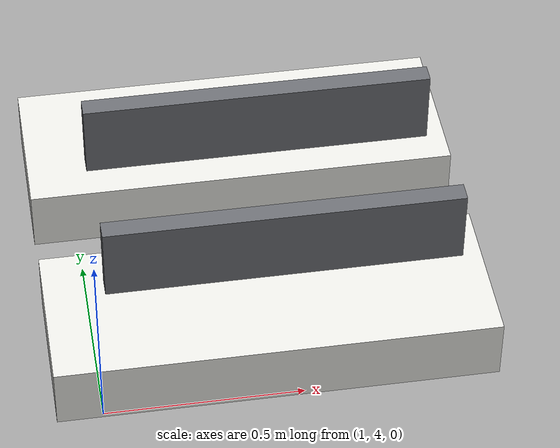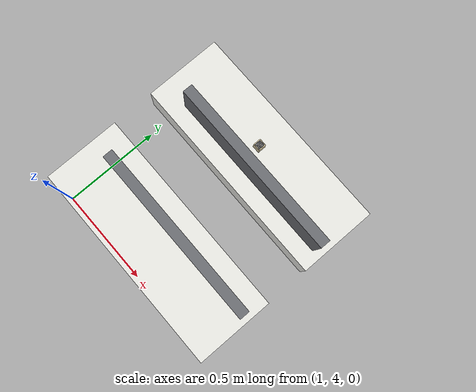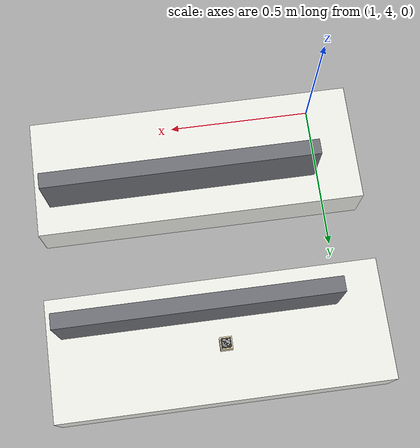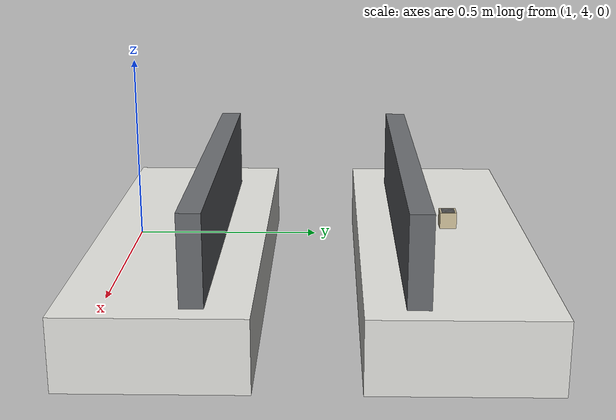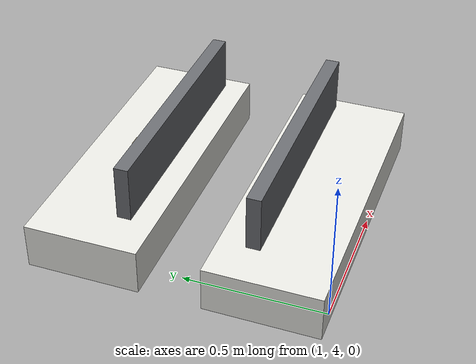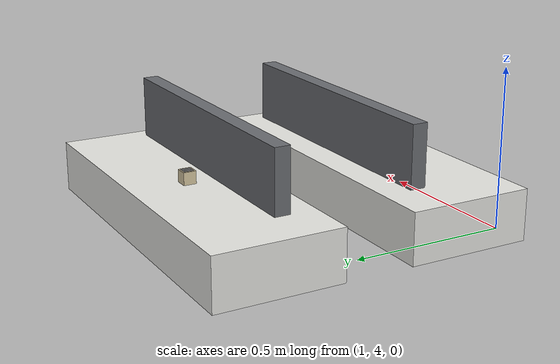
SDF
<sdf version="1.9">
 <world name="arena">
  <model name="map_wall_4">
   <static>true</static>
   <pose>1.48900 4.72000 0.18000 0 0 0.0000000</pose>
   <link name="body">
    <collision name="collision"><geometry><box><size>0.90000 0.05000 0.36000</size></box></geometry></collision>
    <visual name="appearance">
     <geometry><box><size>0.90000 0.05000 0.36000</size></box></geometry>
     <material><ambient>0.42 0.43 0.45 1</ambient><diffuse>0.42 0.43 0.45 1</diffuse></material>
    </visual>
   </link>
  </model>
  <model name="map_wall_7">
   <static>true</static>
   <pose>1.48900 4.27000 0.18000 0 0 0.0000000</pose>
   <link name="body">
    <collision name="collision"><geometry><box><size>0.90000 0.05000 0.36000</size></box></geometry></collision>
    <visual name="appearance">
     <geometry><box><size>0.90000 0.05000 0.36000</size></box></geometry>
     <material><ambient>0.42 0.43 0.45 1</ambient><diffuse>0.42 0.43 0.45 1</diffuse></material>
    </visual>
   </link>
  </model>
  <model name="ws_2_table">
   <static>true</static>
   <pose>1.43628 4.81000 0.08100 0 0 -1.5700000</pose>
   <link name="body">
    <collision name="collision"><geometry><box><size>0.40000 1.10000 0.16200</size></box></geometry></collision>
    <visual name="appearance">
     <geometry><box><size>0.40000 1.10000 0.16200</size></box></geometry>
     <material><ambient>0.91 0.91 0.89 1</ambient><diffuse>0.91 0.91 0.89 1</diffuse></material>
    </visual>
   </link>
  </model>
  <model name="cube_3">
   <pose>1.41626 4.82998 0.18200 0 0 0</pose>
   <link name="body">
    <inertial>
     <mass>0.04</mass>
     <inertia>
      <ixx>0.000010667</ixx>
      <iyy>0.000010667</iyy>
      <izz>0.000010667</izz>
      <ixy>0</ixy>
      <ixz>0</ixz>
      <iyz>0</iyz>
     </inertia>
    </inertial>
    <collision name="cube">
     <geometry><box><size>0.04 0.04 0.04</size></box></geometry>
     <surface><friction><ode><mu>1.2</mu><mu2>1.2</mu2></ode></friction></surface>
    </collision>
    <visual name="cube_appearance">
     <geometry><box><size>0.04 0.04 0.04</size></box></geometry>
     <material><ambient>0.85 0.79 0.64 1</ambient><diffuse>0.85 0.79 0.64 1</diffuse></material>
    </visual>
    <visual name="tag_0_0">
     <pose>-0.0140 0.0140 0.0202 0 0 0</pose>
     <geometry><plane><normal>0 0 1</normal><size>0.004 0.004</size></plane></geometry>
     <material><ambient>0.01 0.01 0.01 1</ambient><diffuse>0.01 0.01 0.01 1</diffuse></material>
    </visual>
    <visual name="tag_0_1">
     <pose>-0.0100 0.0140 0.0202 0 0 0</pose>
     <geometry><plane><normal>0 0 1</normal><size>0.004 0.004</size></plane></geometry>
     <material><ambient>0.01 0.01 0.01 1</ambient><diffuse>0.01 0.01 0.01 1</diffuse></material>
    </visual>
    <visual name="tag_0_2">
     <pose>-0.0060 0.0140 0.0202 0 0 0</pose>
     <geometry><plane><normal>0 0 1</normal><size>0.004 0.004</size></plane></geometry>
     <material><ambient>0.01 0.01 0.01 1</ambient><diffuse>0.01 0.01 0.01 1</diffuse></material>
    </visual>
    <visual name="tag_0_3">
     <pose>-0.0020 0.0140 0.0202 0 0 0</pose>
     <geometry><plane><normal>0 0 1</normal><size>0.004 0.004</size></plane></geometry>
     <material><ambient>0.01 0.01 0.01 1</ambient><diffuse>0.01 0.01 0.01 1</diffuse></material>
    </visual>
    <visual name="tag_0_4">
     <pose>0.0020 0.0140 0.0202 0 0 0</pose>
     <geometry><plane><normal>0 0 1</normal><size>0.004 0.004</size></plane></geometry>
     <material><ambient>0.01 0.01 0.01 1</ambient><diffuse>0.01 0.01 0.01 1</diffuse></material>
    </visual>
    <visual name="tag_0_5">
     <pose>0.0060 0.0140 0.0202 0 0 0</pose>
     <geometry><plane><normal>0 0 1</normal><size>0.004 0.004</size></plane></geometry>
     <material><ambient>0.01 0.01 0.01 1</ambient><diffuse>0.01 0.01 0.01 1</diffuse></material>
    </visual>
    <visual name="tag_0_6">
     <pose>0.0100 0.0140 0.0202 0 0 0</pose>
     <geometry><plane><normal>0 0 1</normal><size>0.004 0.004</size></plane></geometry>
     <material><ambient>0.01 0.01 0.01 1</ambient><diffuse>0.01 0.01 0.01 1</diffuse></material>
    </visual>
    <visual name="tag_0_7">
     <pose>0.0140 0.0140 0.0202 0 0 0</pose>
     <geometry><plane><normal>0 0 1</normal><size>0.004 0.004</size></plane></geometry>
     <material><ambient>0.01 0.01 0.01 1</ambient><diffuse>0.01 0.01 0.01 1</diffuse></material>
    </visual>
    <visual name="tag_1_0">
     <pose>-0.0140 0.0100 0.0202 0 0 0</pose>
     <geometry><plane><normal>0 0 1</normal><size>0.004 0.004</size></plane></geometry>
     <material><ambient>0.01 0.01 0.01 1</ambient><diffuse>0.01 0.01 0.01 1</diffuse></material>
    </visual>
    <visual name="tag_1_1">
     <pose>-0.0100 0.0100 0.0202 0 0 0</pose>
     <geometry><plane><normal>0 0 1</normal><size>0.004 0.004</size></plane></geometry>
     <material><ambient>0.01 0.01 0.01 1</ambient><diffuse>0.01 0.01 0.01 1</diffuse></material>
    </visual>
    <visual name="tag_1_2">
     <pose>-0.0060 0.0100 0.0202 0 0 0</pose>
     <geometry><plane><normal>0 0 1</normal><size>0.004 0.004</size></plane></geometry>
     <material><ambient>0.01 0.01 0.01 1</ambient><diffuse>0.01 0.01 0.01 1</diffuse></material>
    </visual>
    <visual name="tag_1_3">
     <pose>-0.0020 0.0100 0.0202 0 0 0</pose>
     <geometry><plane><normal>0 0 1</normal><size>0.004 0.004</size></plane></geometry>
     <material><ambient>0.01 0.01 0.01 1</ambient><diffuse>0.01 0.01 0.01 1</diffuse></material>
    </visual>
    <visual name="tag_1_4">
     <pose>0.0020 0.0100 0.0202 0 0 0</pose>
     <geometry><plane><normal>0 0 1</normal><size>0.004 0.004</size></plane></geometry>
     <material><ambient>0.95 0.95 0.95 1</ambient><diffuse>0.95 0.95 0.95 1</diffuse></material>
    </visual>
    <visual name="tag_1_5">
     <pose>0.0060 0.0100 0.0202 0 0 0</pose>
     <geometry><plane><normal>0 0 1</normal><size>0.004 0.004</size></plane></geometry>
     <material><ambient>0.95 0.95 0.95 1</ambient><diffuse>0.95 0.95 0.95 1</diffuse></material>
    </visual>
    <visual name="tag_1_6">
     <pose>0.0100 0.0100 0.0202 0 0 0</pose>
     <geometry><plane><normal>0 0 1</normal><size>0.004 0.004</size></plane></geometry>
     <material><ambient>0.01 0.01 0.01 1</ambient><diffuse>0.01 0.01 0.01 1</diffuse></material>
    </visual>
    <visual name="tag_1_7">
     <pose>0.0140 0.0100 0.0202 0 0 0</pose>
     <geometry><plane><normal>0 0 1</normal><size>0.004 0.004</size></plane></geometry>
     <material><ambient>0.01 0.01 0.01 1</ambient><diffuse>0.01 0.01 0.01 1</diffuse></material>
    </visual>
    <visual name="tag_2_0">
     <pose>-0.0140 0.0060 0.0202 0 0 0</pose>
     <geometry><plane><normal>0 0 1</normal><size>0.004 0.004</size></plane></geometry>
     <material><ambient>0.01 0.01 0.01 1</ambient><diffuse>0.01 0.01 0.01 1</diffuse></material>
    </visual>
    <visual name="tag_2_1">
     <pose>-0.0100 0.0060 0.0202 0 0 0</pose>
     <geometry><plane><normal>0 0 1</normal><size>0.004 0.004</size></plane></geometry>
     <material><ambient>0.01 0.01 0.01 1</ambient><diffuse>0.01 0.01 0.01 1</diffuse></material>
    </visual>
    <visual name="tag_2_2">
     <pose>-0.0060 0.0060 0.0202 0 0 0</pose>
     <geometry><plane><normal>0 0 1</normal><size>0.004 0.004</size></plane></geometry>
     <material><ambient>0.95 0.95 0.95 1</ambient><diffuse>0.95 0.95 0.95 1</diffuse></material>
    </visual>
    <visual name="tag_2_3">
     <pose>-0.0020 0.0060 0.0202 0 0 0</pose>
     <geometry><plane><normal>0 0 1</normal><size>0.004 0.004</size></plane></geometry>
     <material><ambient>0.01 0.01 0.01 1</ambient><diffuse>0.01 0.01 0.01 1</diffuse></material>
    </visual>
    <visual name="tag_2_4">
     <pose>0.0020 0.0060 0.0202 0 0 0</pose>
     <geometry><plane><normal>0 0 1</normal><size>0.004 0.004</size></plane></geometry>
     <material><ambient>0.01 0.01 0.01 1</ambient><diffuse>0.01 0.01 0.01 1</diffuse></material>
    </visual>
    <visual name="tag_2_5">
     <pose>0.0060 0.0060 0.0202 0 0 0</pose>
     <geometry><plane><normal>0 0 1</normal><size>0.004 0.004</size></plane></geometry>
     <material><ambient>0.95 0.95 0.95 1</ambient><diffuse>0.95 0.95 0.95 1</diffuse></material>
    </visual>
    <visual name="tag_2_6">
     <pose>0.0100 0.0060 0.0202 0 0 0</pose>
     <geometry><plane><normal>0 0 1</normal><size>0.004 0.004</size></plane></geometry>
     <material><ambient>0.95 0.95 0.95 1</ambient><diffuse>0.95 0.95 0.95 1</diffuse></material>
    </visual>
    <visual name="tag_2_7">
     <pose>0.0140 0.0060 0.0202 0 0 0</pose>
     <geometry><plane><normal>0 0 1</normal><size>0.004 0.004</size></plane></geometry>
     <material><ambient>0.01 0.01 0.01 1</ambient><diffuse>0.01 0.01 0.01 1</diffuse></material>
    </visual>
    <visual name="tag_3_0">
     <pose>-0.0140 0.0020 0.0202 0 0 0</pose>
     <geometry><plane><normal>0 0 1</normal><size>0.004 0.004</size></plane></geometry>
     <material><ambient>0.01 0.01 0.01 1</ambient><diffuse>0.01 0.01 0.01 1</diffuse></material>
    </visual>
    <visual name="tag_3_1">
     <pose>-0.0100 0.0020 0.0202 0 0 0</pose>
     <geometry><plane><normal>0 0 1</normal><size>0.004 0.004</size></plane></geometry>
     <material><ambient>0.95 0.95 0.95 1</ambient><diffuse>0.95 0.95 0.95 1</diffuse></material>
    </visual>
    <visual name="tag_3_2">
     <pose>-0.0060 0.0020 0.0202 0 0 0</pose>
     <geometry><plane><normal>0 0 1</normal><size>0.004 0.004</size></plane></geometry>
     <material><ambient>0.01 0.01 0.01 1</ambient><diffuse>0.01 0.01 0.01 1</diffuse></material>
    </visual>
    <visual name="tag_3_3">
     <pose>-0.0020 0.0020 0.0202 0 0 0</pose>
     <geometry><plane><normal>0 0 1</normal><size>0.004 0.004</size></plane></geometry>
     <material><ambient>0.01 0.01 0.01 1</ambient><diffuse>0.01 0.01 0.01 1</diffuse></material>
    </visual>
    <visual name="tag_3_4">
     <pose>0.0020 0.0020 0.0202 0 0 0</pose>
     <geometry><plane><normal>0 0 1</normal><size>0.004 0.004</size></plane></geometry>
     <material><ambient>0.95 0.95 0.95 1</ambient><diffuse>0.95 0.95 0.95 1</diffuse></material>
    </visual>
    <visual name="tag_3_5">
     <pose>0.0060 0.0020 0.0202 0 0 0</pose>
     <geometry><plane><normal>0 0 1</normal><size>0.004 0.004</size></plane></geometry>
     <material><ambient>0.01 0.01 0.01 1</ambient><diffuse>0.01 0.01 0.01 1</diffuse></material>
    </visual>
    <visual name="tag_3_6">
     <pose>0.0100 0.0020 0.0202 0 0 0</pose>
     <geometry><plane><normal>0 0 1</normal><size>0.004 0.004</size></plane></geometry>
     <material><ambient>0.95 0.95 0.95 1</ambient><diffuse>0.95 0.95 0.95 1</diffuse></material>
    </visual>
    <visual name="tag_3_7">
     <pose>0.0140 0.0020 0.0202 0 0 0</pose>
     <geometry><plane><normal>0 0 1</normal><size>0.004 0.004</size></plane></geometry>
     <material><ambient>0.01 0.01 0.01 1</ambient><diffuse>0.01 0.01 0.01 1</diffuse></material>
    </visual>
    <visual name="tag_4_0">
     <pose>-0.0140 -0.0020 0.0202 0 0 0</pose>
     <geometry><plane><normal>0 0 1</normal><size>0.004 0.004</size></plane></geometry>
     <material><ambient>0.01 0.01 0.01 1</ambient><diffuse>0.01 0.01 0.01 1</diffuse></material>
    </visual>
    <visual name="tag_4_1">
     <pose>-0.0100 -0.0020 0.0202 0 0 0</pose>
     <geometry><plane><normal>0 0 1</normal><size>0.004 0.004</size></plane></geometry>
     <material><ambient>0.95 0.95 0.95 1</ambient><diffuse>0.95 0.95 0.95 1</diffuse></material>
    </visual>
    <visual name="tag_4_2">
     <pose>-0.0060 -0.0020 0.0202 0 0 0</pose>
     <geometry><plane><normal>0 0 1</normal><size>0.004 0.004</size></plane></geometry>
     <material><ambient>0.95 0.95 0.95 1</ambient><diffuse>0.95 0.95 0.95 1</diffuse></material>
    </visual>
    <visual name="tag_4_3">
     <pose>-0.0020 -0.0020 0.0202 0 0 0</pose>
     <geometry><plane><normal>0 0 1</normal><size>0.004 0.004</size></plane></geometry>
     <material><ambient>0.95 0.95 0.95 1</ambient><diffuse>0.95 0.95 0.95 1</diffuse></material>
    </visual>
    <visual name="tag_4_4">
     <pose>0.0020 -0.0020 0.0202 0 0 0</pose>
     <geometry><plane><normal>0 0 1</normal><size>0.004 0.004</size></plane></geometry>
     <material><ambient>0.01 0.01 0.01 1</ambient><diffuse>0.01 0.01 0.01 1</diffuse></material>
    </visual>
    <visual name="tag_4_5">
     <pose>0.0060 -0.0020 0.0202 0 0 0</pose>
     <geometry><plane><normal>0 0 1</normal><size>0.004 0.004</size></plane></geometry>
     <material><ambient>0.01 0.01 0.01 1</ambient><diffuse>0.01 0.01 0.01 1</diffuse></material>
    </visual>
    <visual name="tag_4_6">
     <pose>0.0100 -0.0020 0.0202 0 0 0</pose>
     <geometry><plane><normal>0 0 1</normal><size>0.004 0.004</size></plane></geometry>
     <material><ambient>0.95 0.95 0.95 1</ambient><diffuse>0.95 0.95 0.95 1</diffuse></material>
    </visual>
    <visual name="tag_4_7">
     <pose>0.0140 -0.0020 0.0202 0 0 0</pose>
     <geometry><plane><normal>0 0 1</normal><size>0.004 0.004</size></plane></geometry>
     <material><ambient>0.01 0.01 0.01 1</ambient><diffuse>0.01 0.01 0.01 1</diffuse></material>
    </visual>
    <visual name="tag_5_0">
     <pose>-0.0140 -0.0060 0.0202 0 0 0</pose>
     <geometry><plane><normal>0 0 1</normal><size>0.004 0.004</size></plane></geometry>
     <material><ambient>0.01 0.01 0.01 1</ambient><diffuse>0.01 0.01 0.01 1</diffuse></material>
    </visual>
    <visual name="tag_5_1">
     <pose>-0.0100 -0.0060 0.0202 0 0 0</pose>
     <geometry><plane><normal>0 0 1</normal><size>0.004 0.004</size></plane></geometry>
     <material><ambient>0.95 0.95 0.95 1</ambient><diffuse>0.95 0.95 0.95 1</diffuse></material>
    </visual>
    <visual name="tag_5_2">
     <pose>-0.0060 -0.0060 0.0202 0 0 0</pose>
     <geometry><plane><normal>0 0 1</normal><size>0.004 0.004</size></plane></geometry>
     <material><ambient>0.95 0.95 0.95 1</ambient><diffuse>0.95 0.95 0.95 1</diffuse></material>
    </visual>
    <visual name="tag_5_3">
     <pose>-0.0020 -0.0060 0.0202 0 0 0</pose>
     <geometry><plane><normal>0 0 1</normal><size>0.004 0.004</size></plane></geometry>
     <material><ambient>0.95 0.95 0.95 1</ambient><diffuse>0.95 0.95 0.95 1</diffuse></material>
    </visual>
    <visual name="tag_5_4">
     <pose>0.0020 -0.0060 0.0202 0 0 0</pose>
     <geometry><plane><normal>0 0 1</normal><size>0.004 0.004</size></plane></geometry>
     <material><ambient>0.01 0.01 0.01 1</ambient><diffuse>0.01 0.01 0.01 1</diffuse></material>
    </visual>
    <visual name="tag_5_5">
     <pose>0.0060 -0.0060 0.0202 0 0 0</pose>
     <geometry><plane><normal>0 0 1</normal><size>0.004 0.004</size></plane></geometry>
     <material><ambient>0.01 0.01 0.01 1</ambient><diffuse>0.01 0.01 0.01 1</diffuse></material>
    </visual>
    <visual name="tag_5_6">
     <pose>0.0100 -0.0060 0.0202 0 0 0</pose>
     <geometry><plane><normal>0 0 1</normal><size>0.004 0.004</size></plane></geometry>
     <material><ambient>0.01 0.01 0.01 1</ambient><diffuse>0.01 0.01 0.01 1</diffuse></material>
    </visual>
    <visual name="tag_5_7">
     <pose>0.0140 -0.0060 0.0202 0 0 0</pose>
     <geometry><plane><normal>0 0 1</normal><size>0.004 0.004</size></plane></geometry>
     <material><ambient>0.01 0.01 0.01 1</ambient><diffuse>0.01 0.01 0.01 1</diffuse></material>
    </visual>
    <visual name="tag_6_0">
     <pose>-0.0140 -0.0100 0.0202 0 0 0</pose>
     <geometry><plane><normal>0 0 1</normal><size>0.004 0.004</size></plane></geometry>
     <material><ambient>0.01 0.01 0.01 1</ambient><diffuse>0.01 0.01 0.01 1</diffuse></material>
    </visual>
    <visual name="tag_6_1">
     <pose>-0.0100 -0.0100 0.0202 0 0 0</pose>
     <geometry><plane><normal>0 0 1</normal><size>0.004 0.004</size></plane></geometry>
     <material><ambient>0.95 0.95 0.95 1</ambient><diffuse>0.95 0.95 0.95 1</diffuse></material>
    </visual>
    <visual name="tag_6_2">
     <pose>-0.0060 -0.0100 0.0202 0 0 0</pose>
     <geometry><plane><normal>0 0 1</normal><size>0.004 0.004</size></plane></geometry>
     <material><ambient>0.01 0.01 0.01 1</ambient><diffuse>0.01 0.01 0.01 1</diffuse></material>
    </visual>
    <visual name="tag_6_3">
     <pose>-0.0020 -0.0100 0.0202 0 0 0</pose>
     <geometry><plane><normal>0 0 1</normal><size>0.004 0.004</size></plane></geometry>
     <material><ambient>0.01 0.01 0.01 1</ambient><diffuse>0.01 0.01 0.01 1</diffuse></material>
    </visual>
    <visual name="tag_6_4">
     <pose>0.0020 -0.0100 0.0202 0 0 0</pose>
     <geometry><plane><normal>0 0 1</normal><size>0.004 0.004</size></plane></geometry>
     <material><ambient>0.95 0.95 0.95 1</ambient><diffuse>0.95 0.95 0.95 1</diffuse></material>
    </visual>
    <visual name="tag_6_5">
     <pose>0.0060 -0.0100 0.0202 0 0 0</pose>
     <geometry><plane><normal>0 0 1</normal><size>0.004 0.004</size></plane></geometry>
     <material><ambient>0.95 0.95 0.95 1</ambient><diffuse>0.95 0.95 0.95 1</diffuse></material>
    </visual>
    <visual name="tag_6_6">
     <pose>0.0100 -0.0100 0.0202 0 0 0</pose>
     <geometry><plane><normal>0 0 1</normal><size>0.004 0.004</size></plane></geometry>
     <material><ambient>0.95 0.95 0.95 1</ambient><diffuse>0.95 0.95 0.95 1</diffuse></material>
    </visual>
    <visual name="tag_6_7">
     <pose>0.0140 -0.0100 0.0202 0 0 0</pose>
     <geometry><plane><normal>0 0 1</normal><size>0.004 0.004</size></plane></geometry>
     <material><ambient>0.01 0.01 0.01 1</ambient><diffuse>0.01 0.01 0.01 1</diffuse></material>
    </visual>
    <visual name="tag_7_0">
     <pose>-0.0140 -0.0140 0.0202 0 0 0</pose>
     <geometry><plane><normal>0 0 1</normal><size>0.004 0.004</size></plane></geometry>
     <material><ambient>0.01 0.01 0.01 1</ambient><diffuse>0.01 0.01 0.01 1</diffuse></material>
    </visual>
    <visual name="tag_7_1">
     <pose>-0.0100 -0.0140 0.0202 0 0 0</pose>
     <geometry><plane><normal>0 0 1</normal><size>0.004 0.004</size></plane></geometry>
     <material><ambient>0.01 0.01 0.01 1</ambient><diffuse>0.01 0.01 0.01 1</diffuse></material>
    </visual>
    <visual name="tag_7_2">
     <pose>-0.0060 -0.0140 0.0202 0 0 0</pose>
     <geometry><plane><normal>0 0 1</normal><size>0.004 0.004</size></plane></geometry>
     <material><ambient>0.01 0.01 0.01 1</ambient><diffuse>0.01 0.01 0.01 1</diffuse></material>
    </visual>
    <visual name="tag_7_3">
     <pose>-0.0020 -0.0140 0.0202 0 0 0</pose>
     <geometry><plane><normal>0 0 1</normal><size>0.004 0.004</size></plane></geometry>
     <material><ambient>0.01 0.01 0.01 1</ambient><diffuse>0.01 0.01 0.01 1</diffuse></material>
    </visual>
    <visual name="tag_7_4">
     <pose>0.0020 -0.0140 0.0202 0 0 0</pose>
     <geometry><plane><normal>0 0 1</normal><size>0.004 0.004</size></plane></geometry>
     <material><ambient>0.01 0.01 0.01 1</ambient><diffuse>0.01 0.01 0.01 1</diffuse></material>
    </visual>
    <visual name="tag_7_5">
     <pose>0.0060 -0.0140 0.0202 0 0 0</pose>
     <geometry><plane><normal>0 0 1</normal><size>0.004 0.004</size></plane></geometry>
     <material><ambient>0.01 0.01 0.01 1</ambient><diffuse>0.01 0.01 0.01 1</diffuse></material>
    </visual>
    <visual name="tag_7_6">
     <pose>0.0100 -0.0140 0.0202 0 0 0</pose>
     <geometry><plane><normal>0 0 1</normal><size>0.004 0.004</size></plane></geometry>
     <material><ambient>0.01 0.01 0.01 1</ambient><diffuse>0.01 0.01 0.01 1</diffuse></material>
    </visual>
    <visual name="tag_7_7">
     <pose>0.0140 -0.0140 0.0202 0 0 0</pose>
     <geometry><plane><normal>0 0 1</normal><size>0.004 0.004</size></plane></geometry>
     <material><ambient>0.01 0.01 0.01 1</ambient><diffuse>0.01 0.01 0.01 1</diffuse></material>
    </visual>
   </link>
  </model>
  <model name="ws_3_table">
   <static>true</static>
   <pose>1.43628 4.19000 0.08100 0 0 1.5700000</pose>
   <link name="body">
    <collision name="collision"><geometry><box><size>0.40000 1.10000 0.16200</size></box></geometry></collision>
    <visual name="appearance">
     <geometry><box><size>0.40000 1.10000 0.16200</size></box></geometry>
     <material><ambient>0.91 0.91 0.89 1</ambient><diffuse>0.91 0.91 0.89 1</diffuse></material>
    </visual>
   </link>
  </model>
 </world>
</sdf>
